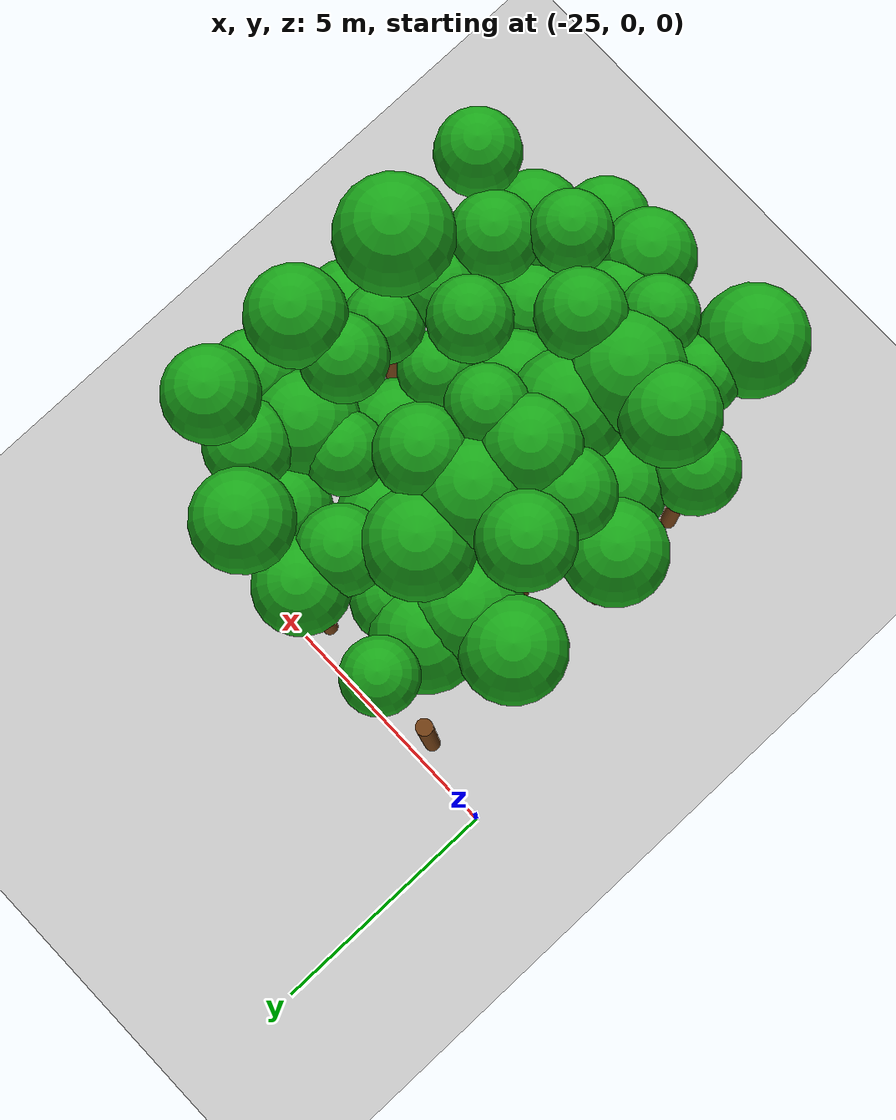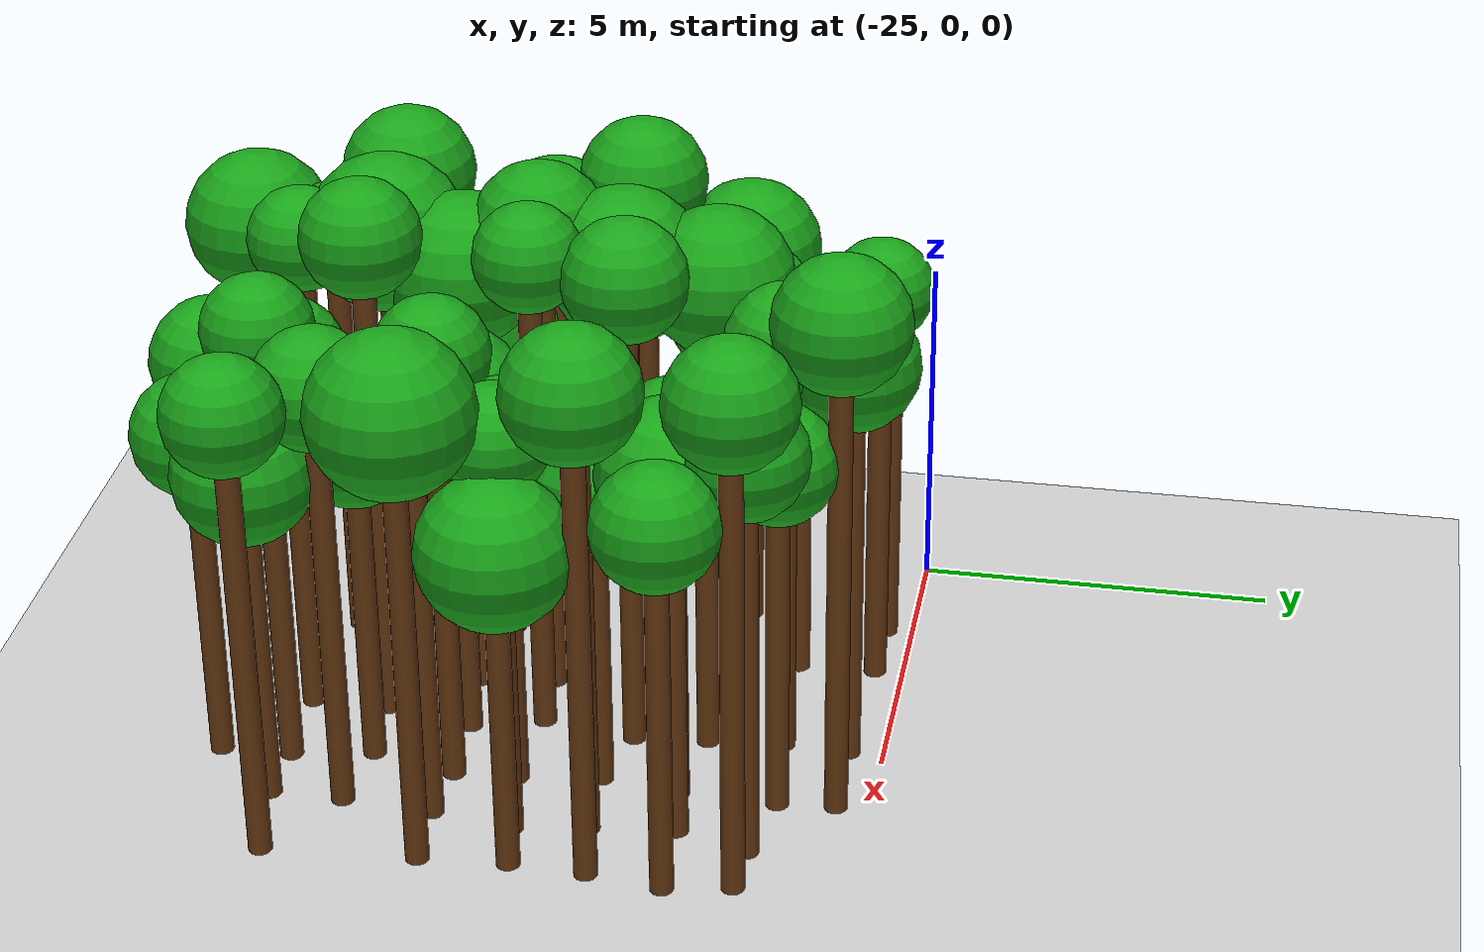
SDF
<sdf version="1.6">
 <world name="forest_world">
  <include><uri>model://sun</uri></include>
  <include><uri>model://ground_plane</uri></include>
  <model name="tree_351_trunk">
   <static>true</static>
   <pose>-23.28 -6.93 2.46 0 0 0</pose>
   <link name="link">
    <collision name="collision">
     <geometry><cylinder><radius>0.16</radius><length>4.92</length></cylinder></geometry>
    </collision>
    <visual name="visual">
     <geometry><cylinder><radius>0.16</radius><length>4.92</length></cylinder></geometry>
     <material><ambient>0.35 0.20 0.05 1</ambient><diffuse>0.45 0.25 0.08 1</diffuse></material>
    </visual>
   </link>
  </model>
  <model name="tree_351_leaf">
   <static>true</static>
   <pose>-23.28 -6.93 5.42 0 0 0</pose>
   <link name="link">
    <collision name="collision"><geometry><sphere><radius>0.84</radius></sphere></geometry></collision>
    <visual name="visual">
     <geometry><sphere><radius>0.84</radius></sphere></geometry>
     <material><ambient>0.05 0.45 0.05 1</ambient><diffuse>0.10 0.65 0.10 1</diffuse></material>
    </visual>
   </link>
  </model>
  <model name="tree_353_trunk">
   <static>true</static>
   <pose>-23.42 -4.80 2.68 0 0 0</pose>
   <link name="link">
    <collision name="collision">
     <geometry><cylinder><radius>0.16</radius><length>5.36</length></cylinder></geometry>
    </collision>
    <visual name="visual">
     <geometry><cylinder><radius>0.16</radius><length>5.36</length></cylinder></geometry>
     <material><ambient>0.35 0.20 0.05 1</ambient><diffuse>0.45 0.25 0.08 1</diffuse></material>
    </visual>
   </link>
  </model>
  <model name="tree_353_leaf">
   <static>true</static>
   <pose>-23.42 -4.80 5.95 0 0 0</pose>
   <link name="link">
    <collision name="collision"><geometry><sphere><radius>0.97</radius></sphere></geometry></collision>
    <visual name="visual">
     <geometry><sphere><radius>0.97</radius></sphere></geometry>
     <material><ambient>0.05 0.45 0.05 1</ambient><diffuse>0.10 0.65 0.10 1</diffuse></material>
    </visual>
   </link>
  </model>
  <model name="tree_355_trunk">
   <static>true</static>
   <pose>-23.45 -2.37 2.70 0 0 0</pose>
   <link name="link">
    <collision name="collision">
     <geometry><cylinder><radius>0.16</radius><length>5.40</length></cylinder></geometry>
    </collision>
    <visual name="visual">
     <geometry><cylinder><radius>0.16</radius><length>5.40</length></cylinder></geometry>
     <material><ambient>0.35 0.20 0.05 1</ambient><diffuse>0.45 0.25 0.08 1</diffuse></material>
    </visual>
   </link>
  </model>
  <model name="tree_355_leaf">
   <static>true</static>
   <pose>-23.45 -2.37 5.98 0 0 0</pose>
   <link name="link">
    <collision name="collision"><geometry><sphere><radius>0.97</radius></sphere></geometry></collision>
    <visual name="visual">
     <geometry><sphere><radius>0.97</radius></sphere></geometry>
     <material><ambient>0.05 0.45 0.05 1</ambient><diffuse>0.10 0.65 0.10 1</diffuse></material>
    </visual>
   </link>
  </model>
  <model name="tree_357_trunk">
   <static>true</static>
   <pose>-23.30 -0.38 2.47 0 0 0</pose>
   <link name="link">
    <collision name="collision">
     <geometry><cylinder><radius>0.16</radius><length>4.94</length></cylinder></geometry>
    </collision>
    <visual name="visual">
     <geometry><cylinder><radius>0.16</radius><length>4.94</length></cylinder></geometry>
     <material><ambient>0.35 0.20 0.05 1</ambient><diffuse>0.45 0.25 0.08 1</diffuse></material>
    </visual>
   </link>
  </model>
  <model name="tree_404_leaf">
   <static>true</static>
   <pose>-22.42 -9.04 6.35 0 0 0</pose>
   <link name="link">
    <collision name="collision"><geometry><sphere><radius>1.01</radius></sphere></geometry></collision>
    <visual name="visual">
     <geometry><sphere><radius>1.01</radius></sphere></geometry>
     <material><ambient>0.05 0.45 0.05 1</ambient><diffuse>0.10 0.65 0.10 1</diffuse></material>
    </visual>
   </link>
  </model>
  <model name="tree_405_trunk">
   <static>true</static>
   <pose>-22.24 -7.93 2.96 0 0 0</pose>
   <link name="link">
    <collision name="collision">
     <geometry><cylinder><radius>0.16</radius><length>5.92</length></cylinder></geometry>
    </collision>
    <visual name="visual">
     <geometry><cylinder><radius>0.16</radius><length>5.92</length></cylinder></geometry>
     <material><ambient>0.35 0.20 0.05 1</ambient><diffuse>0.45 0.25 0.08 1</diffuse></material>
    </visual>
   </link>
  </model>
  <model name="tree_405_leaf">
   <static>true</static>
   <pose>-22.24 -7.93 6.35 0 0 0</pose>
   <link name="link">
    <collision name="collision"><geometry><sphere><radius>0.72</radius></sphere></geometry></collision>
    <visual name="visual">
     <geometry><sphere><radius>0.72</radius></sphere></geometry>
     <material><ambient>0.05 0.45 0.05 1</ambient><diffuse>0.10 0.65 0.10 1</diffuse></material>
    </visual>
   </link>
  </model>
  <model name="tree_406_trunk">
   <static>true</static>
   <pose>-22.46 -6.89 3.35 0 0 0</pose>
   <link name="link">
    <collision name="collision">
     <geometry><cylinder><radius>0.16</radius><length>6.71</length></cylinder></geometry>
    </collision>
    <visual name="visual">
     <geometry><cylinder><radius>0.16</radius><length>6.71</length></cylinder></geometry>
     <material><ambient>0.35 0.20 0.05 1</ambient><diffuse>0.45 0.25 0.08 1</diffuse></material>
    </visual>
   </link>
  </model>
  <model name="tree_406_leaf">
   <static>true</static>
   <pose>-22.46 -6.89 7.26 0 0 0</pose>
   <link name="link">
    <collision name="collision"><geometry><sphere><radius>0.91</radius></sphere></geometry></collision>
    <visual name="visual">
     <geometry><sphere><radius>0.91</radius></sphere></geometry>
     <material><ambient>0.05 0.45 0.05 1</ambient><diffuse>0.10 0.65 0.10 1</diffuse></material>
    </visual>
   </link>
  </model>
  <model name="tree_407_trunk">
   <static>true</static>
   <pose>-22.47 -5.70 2.28 0 0 0</pose>
   <link name="link">
    <collision name="collision">
     <geometry><cylinder><radius>0.16</radius><length>4.56</length></cylinder></geometry>
    </collision>
    <visual name="visual">
     <geometry><cylinder><radius>0.16</radius><length>4.56</length></cylinder></geometry>
     <material><ambient>0.35 0.20 0.05 1</ambient><diffuse>0.45 0.25 0.08 1</diffuse></material>
    </visual>
   </link>
  </model>
  <model name="tree_407_leaf">
   <static>true</static>
   <pose>-22.47 -5.70 5.17 0 0 0</pose>
   <link name="link">
    <collision name="collision"><geometry><sphere><radius>1.02</radius></sphere></geometry></collision>
    <visual name="visual">
     <geometry><sphere><radius>1.02</radius></sphere></geometry>
     <material><ambient>0.05 0.45 0.05 1</ambient><diffuse>0.10 0.65 0.10 1</diffuse></material>
    </visual>
   </link>
  </model>
  <model name="tree_408_trunk">
   <static>true</static>
   <pose>-22.22 -4.81 3.18 0 0 0</pose>
   <link name="link">
    <collision name="collision">
     <geometry><cylinder><radius>0.16</radius><length>6.35</length></cylinder></geometry>
    </collision>
    <visual name="visual">
     <geometry><cylinder><radius>0.16</radius><length>6.35</length></cylinder></geometry>
     <material><ambient>0.35 0.20 0.05 1</ambient><diffuse>0.45 0.25 0.08 1</diffuse></material>
    </visual>
   </link>
  </model>
  <model name="tree_408_leaf">
   <static>true</static>
   <pose>-22.22 -4.81 6.86 0 0 0</pose>
   <link name="link">
    <collision name="collision"><geometry><sphere><radius>0.84</radius></sphere></geometry></collision>
    <visual name="visual">
     <geometry><sphere><radius>0.84</radius></sphere></geometry>
     <material><ambient>0.05 0.45 0.05 1</ambient><diffuse>0.10 0.65 0.10 1</diffuse></material>
    </visual>
   </link>
  </model>
  <model name="tree_409_trunk">
   <static>true</static>
   <pose>-22.38 -3.65 3.45 0 0 0</pose>
   <link name="link">
    <collision name="collision">
     <geometry><cylinder><radius>0.16</radius><length>6.90</length></cylinder></geometry>
    </collision>
    <visual name="visual">
     <geometry><cylinder><radius>0.16</radius><length>6.90</length></cylinder></geometry>
     <material><ambient>0.35 0.20 0.05 1</ambient><diffuse>0.45 0.25 0.08 1</diffuse></material>
    </visual>
   </link>
  </model>
  <model name="tree_409_leaf">
   <static>true</static>
   <pose>-22.38 -3.65 7.42 0 0 0</pose>
   <link name="link">
    <collision name="collision"><geometry><sphere><radius>0.87</radius></sphere></geometry></collision>
    <visual name="visual">
     <geometry><sphere><radius>0.87</radius></sphere></geometry>
     <material><ambient>0.05 0.45 0.05 1</ambient><diffuse>0.10 0.65 0.10 1</diffuse></material>
    </visual>
   </link>
  </model>
  <model name="tree_410_trunk">
   <static>true</static>
   <pose>-22.35 -2.32 2.49 0 0 0</pose>
   <link name="link">
    <collision name="collision">
     <geometry><cylinder><radius>0.16</radius><length>4.98</length></cylinder></geometry>
    </collision>
    <visual name="visual">
     <geometry><cylinder><radius>0.16</radius><length>4.98</length></cylinder></geometry>
     <material><ambient>0.35 0.20 0.05 1</ambient><diffuse>0.45 0.25 0.08 1</diffuse></material>
    </visual>
   </link>
  </model>
  <model name="tree_410_leaf">
   <static>true</static>
   <pose>-22.35 -2.32 5.60 0 0 0</pose>
   <link name="link">
    <collision name="collision"><geometry><sphere><radius>1.03</radius></sphere></geometry></collision>
    <visual name="visual">
     <geometry><sphere><radius>1.03</radius></sphere></geometry>
     <material><ambient>0.05 0.45 0.05 1</ambient><diffuse>0.10 0.65 0.10 1</diffuse></material>
    </visual>
   </link>
  </model>
  <model name="tree_411_trunk">
   <static>true</static>
   <pose>-22.19 -1.49 2.34 0 0 0</pose>
   <link name="link">
    <collision name="collision">
     <geometry><cylinder><radius>0.16</radius><length>4.67</length></cylinder></geometry>
    </collision>
    <visual name="visual">
     <geometry><cylinder><radius>0.16</radius><length>4.67</length></cylinder></geometry>
     <material><ambient>0.35 0.20 0.05 1</ambient><diffuse>0.45 0.25 0.08 1</diffuse></material>
    </visual>
   </link>
  </model>
  <model name="tree_411_leaf">
   <static>true</static>
   <pose>-22.19 -1.49 5.29 0 0 0</pose>
   <link name="link">
    <collision name="collision"><geometry><sphere><radius>1.03</radius></sphere></geometry></collision>
    <visual name="visual">
     <geometry><sphere><radius>1.03</radius></sphere></geometry>
     <material><ambient>0.05 0.45 0.05 1</ambient><diffuse>0.10 0.65 0.10 1</diffuse></material>
    </visual>
   </link>
  </model>
  <model name="tree_412_trunk">
   <static>true</static>
   <pose>-22.23 -0.40 2.86 0 0 0</pose>
   <link name="link">
    <collision name="collision">
     <geometry><cylinder><radius>0.16</radius><length>5.71</length></cylinder></geometry>
    </collision>
    <visual name="visual">
     <geometry><cylinder><radius>0.16</radius><length>5.71</length></cylinder></geometry>
     <material><ambient>0.35 0.20 0.05 1</ambient><diffuse>0.45 0.25 0.08 1</diffuse></material>
    </visual>
   </link>
  </model>
  <model name="tree_412_leaf">
   <static>true</static>
   <pose>-22.23 -0.40 6.14 0 0 0</pose>
   <link name="link">
    <collision name="collision"><geometry><sphere><radius>0.71</radius></sphere></geometry></collision>
    <visual name="visual">
     <geometry><sphere><radius>0.71</radius></sphere></geometry>
     <material><ambient>0.05 0.45 0.05 1</ambient><diffuse>0.10 0.65 0.10 1</diffuse></material>
    </visual>
   </link>
  </model>
  <model name="tree_460_trunk">
   <static>true</static>
   <pose>-21.06 -8.04 3.21 0 0 0</pose>
   <link name="link">
    <collision name="collision">
     <geometry><cylinder><radius>0.16</radius><length>6.41</length></cylinder></geometry>
    </collision>
    <visual name="visual">
     <geometry><cylinder><radius>0.16</radius><length>6.41</length></cylinder></geometry>
     <material><ambient>0.35 0.20 0.05 1</ambient><diffuse>0.45 0.25 0.08 1</diffuse></material>
    </visual>
   </link>
  </model>
  <model name="tree_460_leaf">
   <static>true</static>
   <pose>-21.06 -8.04 6.85 0 0 0</pose>
   <link name="link">
    <collision name="collision"><geometry><sphere><radius>0.72</radius></sphere></geometry></collision>
    <visual name="visual">
     <geometry><sphere><radius>0.72</radius></sphere></geometry>
     <material><ambient>0.05 0.45 0.05 1</ambient><diffuse>0.10 0.65 0.10 1</diffuse></material>
    </visual>
   </link>
  </model>
  <model name="tree_461_trunk">
   <static>true</static>
   <pose>-21.37 -6.93 3.12 0 0 0</pose>
   <link name="link">
    <collision name="collision">
     <geometry><cylinder><radius>0.16</radius><length>6.25</length></cylinder></geometry>
    </collision>
    <visual name="visual">
     <geometry><cylinder><radius>0.16</radius><length>6.25</length></cylinder></geometry>
     <material><ambient>0.35 0.20 0.05 1</ambient><diffuse>0.45 0.25 0.08 1</diffuse></material>
    </visual>
   </link>
  </model>
  <model name="tree_461_leaf">
   <static>true</static>
   <pose>-21.37 -6.93 6.89 0 0 0</pose>
   <link name="link">
    <collision name="collision"><geometry><sphere><radius>1.08</radius></sphere></geometry></collision>
    <visual name="visual">
     <geometry><sphere><radius>1.08</radius></sphere></geometry>
     <material><ambient>0.05 0.45 0.05 1</ambient><diffuse>0.10 0.65 0.10 1</diffuse></material>
    </visual>
   </link>
  </model>
  <model name="tree_462_trunk">
   <static>true</static>
   <pose>-21.11 -5.85 2.97 0 0 0</pose>
   <link name="link">
    <collision name="collision">
     <geometry><cylinder><radius>0.16</radius><length>5.94</length></cylinder></geometry>
    </collision>
    <visual name="visual">
     <geometry><cylinder><radius>0.16</radius><length>5.94</length></cylinder></geometry>
     <material><ambient>0.35 0.20 0.05 1</ambient><diffuse>0.45 0.25 0.08 1</diffuse></material>
    </visual>
   </link>
  </model>
  <model name="tree_462_leaf">
   <static>true</static>
   <pose>-21.11 -5.85 6.57 0 0 0</pose>
   <link name="link">
    <collision name="collision"><geometry><sphere><radius>1.05</radius></sphere></geometry></collision>
    <visual name="visual">
     <geometry><sphere><radius>1.05</radius></sphere></geometry>
     <material><ambient>0.05 0.45 0.05 1</ambient><diffuse>0.10 0.65 0.10 1</diffuse></material>
    </visual>
   </link>
  </model>
  <model name="tree_463_trunk">
   <static>true</static>
   <pose>-21.25 -4.82 3.31 0 0 0</pose>
   <link name="link">
    <collision name="collision">
     <geometry><cylinder><radius>0.16</radius><length>6.62</length></cylinder></geometry>
    </collision>
    <visual name="visual">
     <geometry><cylinder><radius>0.16</radius><length>6.62</length></cylinder></geometry>
     <material><ambient>0.35 0.20 0.05 1</ambient><diffuse>0.45 0.25 0.08 1</diffuse></material>
    </visual>
   </link>
  </model>
  <model name="tree_463_leaf">
   <static>true</static>
   <pose>-21.25 -4.82 7.17 0 0 0</pose>
   <link name="link">
    <collision name="collision"><geometry><sphere><radius>0.92</radius></sphere></geometry></collision>
    <visual name="visual">
     <geometry><sphere><radius>0.92</radius></sphere></geometry>
     <material><ambient>0.05 0.45 0.05 1</ambient><diffuse>0.10 0.65 0.10 1</diffuse></material>
    </visual>
   </link>
  </model>
  <model name="tree_464_trunk">
   <static>true</static>
   <pose>-21.11 -3.66 3.09 0 0 0</pose>
   <link name="link">
    <collision name="collision">
     <geometry><cylinder><radius>0.16</radius><length>6.18</length></cylinder></geometry>
    </collision>
    <visual name="visual">
     <geometry><cylinder><radius>0.16</radius><length>6.18</length></cylinder></geometry>
     <material><ambient>0.35 0.20 0.05 1</ambient><diffuse>0.45 0.25 0.08 1</diffuse></material>
    </visual>
   </link>
  </model>
  <model name="tree_464_leaf">
   <static>true</static>
   <pose>-21.11 -3.66 6.82 0 0 0</pose>
   <link name="link">
    <collision name="collision"><geometry><sphere><radius>1.06</radius></sphere></geometry></collision>
    <visual name="visual">
     <geometry><sphere><radius>1.06</radius></sphere></geometry>
     <material><ambient>0.05 0.45 0.05 1</ambient><diffuse>0.10 0.65 0.10 1</diffuse></material>
    </visual>
   </link>
  </model>
  <model name="tree_465_trunk">
   <static>true</static>
   <pose>-21.10 -2.40 3.04 0 0 0</pose>
   <link name="link">
    <collision name="collision">
     <geometry><cylinder><radius>0.16</radius><length>6.09</length></cylinder></geometry>
    </collision>
    <visual name="visual">
     <geometry><cylinder><radius>0.16</radius><length>6.09</length></cylinder></geometry>
     <material><ambient>0.35 0.20 0.05 1</ambient><diffuse>0.45 0.25 0.08 1</diffuse></material>
    </visual>
   </link>
  </model>
  <model name="tree_465_leaf">
   <static>true</static>
   <pose>-21.10 -2.40 6.69 0 0 0</pose>
   <link name="link">
    <collision name="collision"><geometry><sphere><radius>1.01</radius></sphere></geometry></collision>
    <visual name="visual">
     <geometry><sphere><radius>1.01</radius></sphere></geometry>
     <material><ambient>0.05 0.45 0.05 1</ambient><diffuse>0.10 0.65 0.10 1</diffuse></material>
    </visual>
   </link>
  </model>
  <model name="tree_466_trunk">
   <static>true</static>
   <pose>-21.31 -1.56 2.31 0 0 0</pose>
   <link name="link">
    <collision name="collision">
     <geometry><cylinder><radius>0.16</radius><length>4.63</length></cylinder></geometry>
    </collision>
    <visual name="visual">
     <geometry><cylinder><radius>0.16</radius><length>4.63</length></cylinder></geometry>
     <material><ambient>0.35 0.20 0.05 1</ambient><diffuse>0.45 0.25 0.08 1</diffuse></material>
    </visual>
   </link>
  </model>
  <model name="tree_466_leaf">
   <static>true</static>
   <pose>-21.31 -1.56 5.12 0 0 0</pose>
   <link name="link">
    <collision name="collision"><geometry><sphere><radius>0.82</radius></sphere></geometry></collision>
    <visual name="visual">
     <geometry><sphere><radius>0.82</radius></sphere></geometry>
     <material><ambient>0.05 0.45 0.05 1</ambient><diffuse>0.10 0.65 0.10 1</diffuse></material>
    </visual>
   </link>
  </model>
  <model name="tree_514_trunk">
   <static>true</static>
   <pose>-19.96 -8.98 2.49 0 0 0</pose>
   <link name="link">
    <collision name="collision">
     <geometry><cylinder><radius>0.16</radius><length>4.98</length></cylinder></geometry>
    </collision>
    <visual name="visual">
     <geometry><cylinder><radius>0.16</radius><length>4.98</length></cylinder></geometry>
     <material><ambient>0.35 0.20 0.05 1</ambient><diffuse>0.45 0.25 0.08 1</diffuse></material>
    </visual>
   </link>
  </model>
  <model name="tree_514_leaf">
   <static>true</static>
   <pose>-19.96 -8.98 5.51 0 0 0</pose>
   <link name="link">
    <collision name="collision"><geometry><sphere><radius>0.89</radius></sphere></geometry></collision>
    <visual name="visual">
     <geometry><sphere><radius>0.89</radius></sphere></geometry>
     <material><ambient>0.05 0.45 0.05 1</ambient><diffuse>0.10 0.65 0.10 1</diffuse></material>
    </visual>
   </link>
  </model>
  <model name="tree_515_trunk">
   <static>true</static>
   <pose>-20.21 -8.07 2.54 0 0 0</pose>
   <link name="link">
    <collision name="collision">
     <geometry><cylinder><radius>0.16</radius><length>5.08</length></cylinder></geometry>
    </collision>
    <visual name="visual">
     <geometry><cylinder><radius>0.16</radius><length>5.08</length></cylinder></geometry>
     <material><ambient>0.35 0.20 0.05 1</ambient><diffuse>0.45 0.25 0.08 1</diffuse></material>
    </visual>
   </link>
  </model>
  <model name="tree_515_leaf">
   <static>true</static>
   <pose>-20.21 -8.07 5.55 0 0 0</pose>
   <link name="link">
    <collision name="collision"><geometry><sphere><radius>0.79</radius></sphere></geometry></collision>
    <visual name="visual">
     <geometry><sphere><radius>0.79</radius></sphere></geometry>
     <material><ambient>0.05 0.45 0.05 1</ambient><diffuse>0.10 0.65 0.10 1</diffuse></material>
    </visual>
   </link>
  </model>
  <model name="tree_516_trunk">
   <static>true</static>
   <pose>-20.22 -6.97 3.44 0 0 0</pose>
   <link name="link">
    <collision name="collision">
     <geometry><cylinder><radius>0.16</radius><length>6.88</length></cylinder></geometry>
    </collision>
    <visual name="visual">
     <geometry><cylinder><radius>0.16</radius><length>6.88</length></cylinder></geometry>
     <material><ambient>0.35 0.20 0.05 1</ambient><diffuse>0.45 0.25 0.08 1</diffuse></material>
    </visual>
   </link>
  </model>
  <model name="tree_516_leaf">
   <static>true</static>
   <pose>-20.22 -6.97 7.37 0 0 0</pose>
   <link name="link">
    <collision name="collision"><geometry><sphere><radius>0.81</radius></sphere></geometry></collision>
    <visual name="visual">
     <geometry><sphere><radius>0.81</radius></sphere></geometry>
     <material><ambient>0.05 0.45 0.05 1</ambient><diffuse>0.10 0.65 0.10 1</diffuse></material>
    </visual>
   </link>
  </model>
  <model name="tree_517_trunk">
   <static>true</static>
   <pose>-19.97 -5.75 2.38 0 0 0</pose>
   <link name="link">
    <collision name="collision">
     <geometry><cylinder><radius>0.16</radius><length>4.76</length></cylinder></geometry>
    </collision>
    <visual name="visual">
     <geometry><cylinder><radius>0.16</radius><length>4.76</length></cylinder></geometry>
     <material><ambient>0.35 0.20 0.05 1</ambient><diffuse>0.45 0.25 0.08 1</diffuse></material>
    </visual>
   </link>
  </model>
  <model name="tree_517_leaf">
   <static>true</static>
   <pose>-19.97 -5.75 5.32 0 0 0</pose>
   <link name="link">
    <collision name="collision"><geometry><sphere><radius>0.94</radius></sphere></geometry></collision>
    <visual name="visual">
     <geometry><sphere><radius>0.94</radius></sphere></geometry>
     <material><ambient>0.05 0.45 0.05 1</ambient><diffuse>0.10 0.65 0.10 1</diffuse></material>
    </visual>
   </link>
  </model>
  <model name="tree_518_trunk">
   <static>true</static>
   <pose>-20.26 -4.76 3.40 0 0 0</pose>
   <link name="link">
    <collision name="collision">
     <geometry><cylinder><radius>0.16</radius><length>6.80</length></cylinder></geometry>
    </collision>
    <visual name="visual">
     <geometry><cylinder><radius>0.16</radius><length>6.80</length></cylinder></geometry>
     <material><ambient>0.35 0.20 0.05 1</ambient><diffuse>0.45 0.25 0.08 1</diffuse></material>
    </visual>
   </link>
  </model>
  <model name="tree_518_leaf">
   <static>true</static>
   <pose>-20.26 -4.76 7.25 0 0 0</pose>
   <link name="link">
    <collision name="collision"><geometry><sphere><radius>0.74</radius></sphere></geometry></collision>
    <visual name="visual">
     <geometry><sphere><radius>0.74</radius></sphere></geometry>
     <material><ambient>0.05 0.45 0.05 1</ambient><diffuse>0.10 0.65 0.10 1</diffuse></material>
    </visual>
   </link>
  </model>
  <model name="tree_519_trunk">
   <static>true</static>
   <pose>-20.05 -3.45 3.32 0 0 0</pose>
   <link name="link">
    <collision name="collision">
     <geometry><cylinder><radius>0.16</radius><length>6.64</length></cylinder></geometry>
    </collision>
    <visual name="visual">
     <geometry><cylinder><radius>0.16</radius><length>6.64</length></cylinder></geometry>
     <material><ambient>0.35 0.20 0.05 1</ambient><diffuse>0.45 0.25 0.08 1</diffuse></material>
    </visual>
   </link>
  </model>
  <model name="tree_519_leaf">
   <static>true</static>
   <pose>-20.05 -3.45 7.14 0 0 0</pose>
   <link name="link">
    <collision name="collision"><geometry><sphere><radius>0.84</radius></sphere></geometry></collision>
    <visual name="visual">
     <geometry><sphere><radius>0.84</radius></sphere></geometry>
     <material><ambient>0.05 0.45 0.05 1</ambient><diffuse>0.10 0.65 0.10 1</diffuse></material>
    </visual>
   </link>
  </model>
  <model name="tree_520_trunk">
   <static>true</static>
   <pose>-20.15 -2.43 2.09 0 0 0</pose>
   <link name="link">
    <collision name="collision">
     <geometry><cylinder><radius>0.16</radius><length>4.19</length></cylinder></geometry>
    </collision>
    <visual name="visual">
     <geometry><cylinder><radius>0.16</radius><length>4.19</length></cylinder></geometry>
     <material><ambient>0.35 0.20 0.05 1</ambient><diffuse>0.45 0.25 0.08 1</diffuse></material>
    </visual>
   </link>
  </model>
  <model name="tree_520_leaf">
   <static>true</static>
   <pose>-20.15 -2.43 4.77 0 0 0</pose>
   <link name="link">
    <collision name="collision"><geometry><sphere><radius>0.97</radius></sphere></geometry></collision>
    <visual name="visual">
     <geometry><sphere><radius>0.97</radius></sphere></geometry>
     <material><ambient>0.05 0.45 0.05 1</ambient><diffuse>0.10 0.65 0.10 1</diffuse></material>
    </visual>
   </link>
  </model>
  <model name="tree_521_trunk">
   <static>true</static>
   <pose>-20.23 -1.39 2.91 0 0 0</pose>
   <link name="link">
    <collision name="collision">
     <geometry><cylinder><radius>0.16</radius><length>5.82</length></cylinder></geometry>
    </collision>
    <visual name="visual">
     <geometry><cylinder><radius>0.16</radius><length>5.82</length></cylinder></geometry>
     <material><ambient>0.35 0.20 0.05 1</ambient><diffuse>0.45 0.25 0.08 1</diffuse></material>
    </visual>
   </link>
  </model>
  <model name="tree_521_leaf">
   <static>true</static>
   <pose>-20.23 -1.39 6.31 0 0 0</pose>
   <link name="link">
    <collision name="collision"><geometry><sphere><radius>0.82</radius></sphere></geometry></collision>
    <visual name="visual">
     <geometry><sphere><radius>0.82</radius></sphere></geometry>
     <material><ambient>0.05 0.45 0.05 1</ambient><diffuse>0.10 0.65 0.10 1</diffuse></material>
    </visual>
   </link>
  </model>
  <model name="tree_522_trunk">
   <static>true</static>
   <pose>-20.18 -0.48 2.79 0 0 0</pose>
   <link name="link">
    <collision name="collision">
     <geometry><cylinder><radius>0.16</radius><length>5.57</length></cylinder></geometry>
    </collision>
    <visual name="visual">
     <geometry><cylinder><radius>0.16</radius><length>5.57</length></cylinder></geometry>
     <material><ambient>0.35 0.20 0.05 1</ambient><diffuse>0.45 0.25 0.08 1</diffuse></material>
    </visual>
   </link>
  </model>
  <model name="tree_522_leaf">
   <static>true</static>
   <pose>-20.18 -0.48 6.10 0 0 0</pose>
   <link name="link">
    <collision name="collision"><geometry><sphere><radius>0.88</radius></sphere></geometry></collision>
    <visual name="visual">
     <geometry><sphere><radius>0.88</radius></sphere></geometry>
     <material><ambient>0.05 0.45 0.05 1</ambient><diffuse>0.10 0.65 0.10 1</diffuse></material>
    </visual>
   </link>
  </model>
  <model name="tree_569_trunk">
   <static>true</static>
   <pose>-18.88 -9.00 2.25 0 0 0</pose>
   <link name="link">
    <collision name="collision">
     <geometry><cylinder><radius>0.16</radius><length>4.50</length></cylinder></geometry>
    </collision>
    <visual name="visual">
     <geometry><cylinder><radius>0.16</radius><length>4.50</length></cylinder></geometry>
     <material><ambient>0.35 0.20 0.05 1</ambient><diffuse>0.45 0.25 0.08 1</diffuse></material>
    </visual>
   </link>
  </model>
  <model name="tree_569_leaf">
   <static>true</static>
   <pose>-18.88 -9.00 5.00 0 0 0</pose>
   <link name="link">
    <collision name="collision"><geometry><sphere><radius>0.84</radius></sphere></geometry></collision>
    <visual name="visual">
     <geometry><sphere><radius>0.84</radius></sphere></geometry>
     <material><ambient>0.05 0.45 0.05 1</ambient><diffuse>0.10 0.65 0.10 1</diffuse></material>
    </visual>
   </link>
  </model>
  <model name="tree_570_trunk">
   <static>true</static>
   <pose>-18.91 -8.02 3.09 0 0 0</pose>
   <link name="link">
    <collision name="collision">
     <geometry><cylinder><radius>0.16</radius><length>6.18</length></cylinder></geometry>
    </collision>
    <visual name="visual">
     <geometry><cylinder><radius>0.16</radius><length>6.18</length></cylinder></geometry>
     <material><ambient>0.35 0.20 0.05 1</ambient><diffuse>0.45 0.25 0.08 1</diffuse></material>
    </visual>
   </link>
  </model>
  <model name="tree_570_leaf">
   <static>true</static>
   <pose>-18.91 -8.02 6.63 0 0 0</pose>
   <link name="link">
    <collision name="collision"><geometry><sphere><radius>0.75</radius></sphere></geometry></collision>
    <visual name="visual">
     <geometry><sphere><radius>0.75</radius></sphere></geometry>
     <material><ambient>0.05 0.45 0.05 1</ambient><diffuse>0.10 0.65 0.10 1</diffuse></material>
    </visual>
   </link>
  </model>
  <model name="tree_571_trunk">
   <static>true</static>
   <pose>-19.11 -6.90 2.21 0 0 0</pose>
   <link name="link">
    <collision name="collision">
     <geometry><cylinder><radius>0.16</radius><length>4.41</length></cylinder></geometry>
    </collision>
    <visual name="visual">
     <geometry><cylinder><radius>0.16</radius><length>4.41</length></cylinder></geometry>
     <material><ambient>0.35 0.20 0.05 1</ambient><diffuse>0.45 0.25 0.08 1</diffuse></material>
    </visual>
   </link>
  </model>
  <model name="tree_571_leaf">
   <static>true</static>
   <pose>-19.11 -6.90 4.92 0 0 0</pose>
   <link name="link">
    <collision name="collision"><geometry><sphere><radius>0.85</radius></sphere></geometry></collision>
    <visual name="visual">
     <geometry><sphere><radius>0.85</radius></sphere></geometry>
     <material><ambient>0.05 0.45 0.05 1</ambient><diffuse>0.10 0.65 0.10 1</diffuse></material>
    </visual>
   </link>
  </model>
  <model name="tree_572_trunk">
   <static>true</static>
   <pose>-18.82 -5.71 3.04 0 0 0</pose>
   <link name="link">
    <collision name="collision">
     <geometry><cylinder><radius>0.16</radius><length>6.07</length></cylinder></geometry>
    </collision>
    <visual name="visual">
     <geometry><cylinder><radius>0.16</radius><length>6.07</length></cylinder></geometry>
     <material><ambient>0.35 0.20 0.05 1</ambient><diffuse>0.45 0.25 0.08 1</diffuse></material>
    </visual>
   </link>
  </model>
  <model name="tree_572_leaf">
   <static>true</static>
   <pose>-18.82 -5.71 6.54 0 0 0</pose>
   <link name="link">
    <collision name="collision"><geometry><sphere><radius>0.77</radius></sphere></geometry></collision>
    <visual name="visual">
     <geometry><sphere><radius>0.77</radius></sphere></geometry>
     <material><ambient>0.05 0.45 0.05 1</ambient><diffuse>0.10 0.65 0.10 1</diffuse></material>
    </visual>
   </link>
  </model>
  <model name="tree_573_trunk">
   <static>true</static>
   <pose>-18.87 -4.84 2.52 0 0 0</pose>
   <link name="link">
    <collision name="collision">
     <geometry><cylinder><radius>0.16</radius><length>5.04</length></cylinder></geometry>
    </collision>
    <visual name="visual">
     <geometry><cylinder><radius>0.16</radius><length>5.04</length></cylinder></geometry>
     <material><ambient>0.35 0.20 0.05 1</ambient><diffuse>0.45 0.25 0.08 1</diffuse></material>
    </visual>
   </link>
  </model>
  <model name="tree_573_leaf">
   <static>true</static>
   <pose>-18.87 -4.84 5.47 0 0 0</pose>
   <link name="link">
    <collision name="collision"><geometry><sphere><radius>0.71</radius></sphere></geometry></collision>
    <visual name="visual">
     <geometry><sphere><radius>0.71</radius></sphere></geometry>
     <material><ambient>0.05 0.45 0.05 1</ambient><diffuse>0.10 0.65 0.10 1</diffuse></material>
    </visual>
   </link>
  </model>
  <model name="tree_574_trunk">
   <static>true</static>
   <pose>-19.04 -3.70 2.10 0 0 0</pose>
   <link name="link">
    <collision name="collision">
     <geometry><cylinder><radius>0.16</radius><length>4.21</length></cylinder></geometry>
    </collision>
    <visual name="visual">
     <geometry><cylinder><radius>0.16</radius><length>4.21</length></cylinder></geometry>
     <material><ambient>0.35 0.20 0.05 1</ambient><diffuse>0.45 0.25 0.08 1</diffuse></material>
    </visual>
   </link>
  </model>
  <model name="tree_574_leaf">
   <static>true</static>
   <pose>-19.04 -3.70 4.76 0 0 0</pose>
   <link name="link">
    <collision name="collision"><geometry><sphere><radius>0.92</radius></sphere></geometry></collision>
    <visual name="visual">
     <geometry><sphere><radius>0.92</radius></sphere></geometry>
     <material><ambient>0.05 0.45 0.05 1</ambient><diffuse>0.10 0.65 0.10 1</diffuse></material>
    </visual>
   </link>
  </model>
  <model name="tree_575_trunk">
   <static>true</static>
   <pose>-18.86 -2.62 2.56 0 0 0</pose>
   <link name="link">
    <collision name="collision">
     <geometry><cylinder><radius>0.16</radius><length>5.12</length></cylinder></geometry>
    </collision>
    <visual name="visual">
     <geometry><cylinder><radius>0.16</radius><length>5.12</length></cylinder></geometry>
     <material><ambient>0.35 0.20 0.05 1</ambient><diffuse>0.45 0.25 0.08 1</diffuse></material>
    </visual>
   </link>
  </model>
  <model name="tree_575_leaf">
   <static>true</static>
   <pose>-18.86 -2.62 5.59 0 0 0</pose>
   <link name="link">
    <collision name="collision"><geometry><sphere><radius>0.78</radius></sphere></geometry></collision>
    <visual name="visual">
     <geometry><sphere><radius>0.78</radius></sphere></geometry>
     <material><ambient>0.05 0.45 0.05 1</ambient><diffuse>0.10 0.65 0.10 1</diffuse></material>
    </visual>
   </link>
  </model>
  <model name="tree_576_trunk">
   <static>true</static>
   <pose>-18.85 -1.26 2.42 0 0 0</pose>
   <link name="link">
    <collision name="collision">
     <geometry><cylinder><radius>0.16</radius><length>4.84</length></cylinder></geometry>
    </collision>
    <visual name="visual">
     <geometry><cylinder><radius>0.16</radius><length>4.84</length></cylinder></geometry>
     <material><ambient>0.35 0.20 0.05 1</ambient><diffuse>0.45 0.25 0.08 1</diffuse></material>
    </visual>
   </link>
  </model>
  <model name="tree_576_leaf">
   <static>true</static>
   <pose>-18.85 -1.26 5.32 0 0 0</pose>
   <link name="link">
    <collision name="collision"><geometry><sphere><radius>0.81</radius></sphere></geometry></collision>
    <visual name="visual">
     <geometry><sphere><radius>0.81</radius></sphere></geometry>
     <material><ambient>0.05 0.45 0.05 1</ambient><diffuse>0.10 0.65 0.10 1</diffuse></material>
    </visual>
   </link>
  </model>
  <model name="tree_577_trunk">
   <static>true</static>
   <pose>-18.91 -0.47 3.41 0 0 0</pose>
   <link name="link">
    <collision name="collision">
     <geometry><cylinder><radius>0.16</radius><length>6.82</length></cylinder></geometry>
    </collision>
    <visual name="visual">
     <geometry><cylinder><radius>0.16</radius><length>6.82</length></cylinder></geometry>
     <material><ambient>0.35 0.20 0.05 1</ambient><diffuse>0.45 0.25 0.08 1</diffuse></material>
    </visual>
   </link>
  </model>
  <model name="tree_577_leaf">
   <static>true</static>
   <pose>-18.91 -0.47 7.37 0 0 0</pose>
   <link name="link">
    <collision name="collision"><geometry><sphere><radius>0.91</radius></sphere></geometry></collision>
    <visual name="visual">
     <geometry><sphere><radius>0.91</radius></sphere></geometry>
     <material><ambient>0.05 0.45 0.05 1</ambient><diffuse>0.10 0.65 0.10 1</diffuse></material>
    </visual>
   </link>
  </model>
  <model name="tree_625_trunk">
   <static>true</static>
   <pose>-17.99 -8.06 2.23 0 0 0</pose>
   <link name="link">
    <collision name="collision">
     <geometry><cylinder><radius>0.16</radius><length>4.45</length></cylinder></geometry>
    </collision>
    <visual name="visual">
     <geometry><cylinder><radius>0.16</radius><length>4.45</length></cylinder></geometry>
     <material><ambient>0.35 0.20 0.05 1</ambient><diffuse>0.45 0.25 0.08 1</diffuse></material>
    </visual>
   </link>
  </model>
  <model name="tree_625_leaf">
   <static>true</static>
   <pose>-17.99 -8.06 5.02 0 0 0</pose>
   <link name="link">
    <collision name="collision"><geometry><sphere><radius>0.95</radius></sphere></geometry></collision>
    <visual name="visual">
     <geometry><sphere><radius>0.95</radius></sphere></geometry>
     <material><ambient>0.05 0.45 0.05 1</ambient><diffuse>0.10 0.65 0.10 1</diffuse></material>
    </visual>
   </link>
  </model>
  <model name="tree_626_trunk">
   <static>true</static>
   <pose>-18.00 -7.05 2.93 0 0 0</pose>
   <link name="link">
    <collision name="collision">
     <geometry><cylinder><radius>0.16</radius><length>5.86</length></cylinder></geometry>
    </collision>
    <visual name="visual">
     <geometry><cylinder><radius>0.16</radius><length>5.86</length></cylinder></geometry>
     <material><ambient>0.35 0.20 0.05 1</ambient><diffuse>0.45 0.25 0.08 1</diffuse></material>
    </visual>
   </link>
  </model>
  <model name="tree_626_leaf">
   <static>true</static>
   <pose>-18.00 -7.05 6.36 0 0 0</pose>
   <link name="link">
    <collision name="collision"><geometry><sphere><radius>0.82</radius></sphere></geometry></collision>
    <visual name="visual">
     <geometry><sphere><radius>0.82</radius></sphere></geometry>
     <material><ambient>0.05 0.45 0.05 1</ambient><diffuse>0.10 0.65 0.10 1</diffuse></material>
    </visual>
   </link>
  </model>
  <model name="tree_627_trunk">
   <static>true</static>
   <pose>-17.91 -5.79 2.79 0 0 0</pose>
   <link name="link">
    <collision name="collision">
     <geometry><cylinder><radius>0.16</radius><length>5.58</length></cylinder></geometry>
    </collision>
    <visual name="visual">
     <geometry><cylinder><radius>0.16</radius><length>5.58</length></cylinder></geometry>
     <material><ambient>0.35 0.20 0.05 1</ambient><diffuse>0.45 0.25 0.08 1</diffuse></material>
    </visual>
   </link>
  </model>
  <model name="tree_627_leaf">
   <static>true</static>
   <pose>-17.91 -5.79 6.03 0 0 0</pose>
   <link name="link">
    <collision name="collision"><geometry><sphere><radius>0.75</radius></sphere></geometry></collision>
    <visual name="visual">
     <geometry><sphere><radius>0.75</radius></sphere></geometry>
     <material><ambient>0.05 0.45 0.05 1</ambient><diffuse>0.10 0.65 0.10 1</diffuse></material>
    </visual>
   </link>
  </model>
  <model name="tree_628_trunk">
   <static>true</static>
   <pose>-17.73 -4.66 2.78 0 0 0</pose>
   <link name="link">
    <collision name="collision">
     <geometry><cylinder><radius>0.16</radius><length>5.57</length></cylinder></geometry>
    </collision>
    <visual name="visual">
     <geometry><cylinder><radius>0.16</radius><length>5.57</length></cylinder></geometry>
     <material><ambient>0.35 0.20 0.05 1</ambient><diffuse>0.45 0.25 0.08 1</diffuse></material>
    </visual>
   </link>
  </model>
  <model name="tree_628_leaf">
   <static>true</static>
   <pose>-17.73 -4.66 6.01 0 0 0</pose>
   <link name="link">
    <collision name="collision"><geometry><sphere><radius>0.74</radius></sphere></geometry></collision>
    <visual name="visual">
     <geometry><sphere><radius>0.74</radius></sphere></geometry>
     <material><ambient>0.05 0.45 0.05 1</ambient><diffuse>0.10 0.65 0.10 1</diffuse></material>
    </visual>
   </link>
  </model>
  <model name="tree_629_trunk">
   <static>true</static>
   <pose>-17.88 -3.65 3.11 0 0 0</pose>
   <link name="link">
    <collision name="collision">
     <geometry><cylinder><radius>0.16</radius><length>6.22</length></cylinder></geometry>
    </collision>
    <visual name="visual">
     <geometry><cylinder><radius>0.16</radius><length>6.22</length></cylinder></geometry>
     <material><ambient>0.35 0.20 0.05 1</ambient><diffuse>0.45 0.25 0.08 1</diffuse></material>
    </visual>
   </link>
  </model>
  <model name="tree_629_leaf">
   <static>true</static>
   <pose>-17.88 -3.65 6.69 0 0 0</pose>
   <link name="link">
    <collision name="collision"><geometry><sphere><radius>0.79</radius></sphere></geometry></collision>
    <visual name="visual">
     <geometry><sphere><radius>0.79</radius></sphere></geometry>
     <material><ambient>0.05 0.45 0.05 1</ambient><diffuse>0.10 0.65 0.10 1</diffuse></material>
    </visual>
   </link>
  </model>
  <model name="tree_630_trunk">
   <static>true</static>
   <pose>-18.03 -2.48 2.48 0 0 0</pose>
   <link name="link">
    <collision name="collision">
     <geometry><cylinder><radius>0.16</radius><length>4.96</length></cylinder></geometry>
    </collision>
    <visual name="visual">
     <geometry><cylinder><radius>0.16</radius><length>4.96</length></cylinder></geometry>
     <material><ambient>0.35 0.20 0.05 1</ambient><diffuse>0.45 0.25 0.08 1</diffuse></material>
    </visual>
   </link>
  </model>
  <model name="tree_630_leaf">
   <static>true</static>
   <pose>-18.03 -2.48 5.56 0 0 0</pose>
   <link name="link">
    <collision name="collision"><geometry><sphere><radius>0.99</radius></sphere></geometry></collision>
    <visual name="visual">
     <geometry><sphere><radius>0.99</radius></sphere></geometry>
     <material><ambient>0.05 0.45 0.05 1</ambient><diffuse>0.10 0.65 0.10 1</diffuse></material>
    </visual>
   </link>
  </model>
  <model name="tree_631_trunk">
   <static>true</static>
   <pose>-17.72 -1.48 2.78 0 0 0</pose>
   <link name="link">
    <collision name="collision">
     <geometry><cylinder><radius>0.16</radius><length>5.55</length></cylinder></geometry>
    </collision>
    <visual name="visual">
     <geometry><cylinder><radius>0.16</radius><length>5.55</length></cylinder></geometry>
     <material><ambient>0.35 0.20 0.05 1</ambient><diffuse>0.45 0.25 0.08 1</diffuse></material>
    </visual>
   </link>
  </model>
  <model name="tree_631_leaf">
   <static>true</static>
   <pose>-17.72 -1.48 6.05 0 0 0</pose>
   <link name="link">
    <collision name="collision"><geometry><sphere><radius>0.82</radius></sphere></geometry></collision>
    <visual name="visual">
     <geometry><sphere><radius>0.82</radius></sphere></geometry>
     <material><ambient>0.05 0.45 0.05 1</ambient><diffuse>0.10 0.65 0.10 1</diffuse></material>
    </visual>
   </link>
  </model>
  <model name="tree_680_trunk">
   <static>true</static>
   <pose>-16.76 -7.84 3.05 0 0 0</pose>
   <link name="link">
    <collision name="collision">
     <geometry><cylinder><radius>0.16</radius><length>6.11</length></cylinder></geometry>
    </collision>
    <visual name="visual">
     <geometry><cylinder><radius>0.16</radius><length>6.11</length></cylinder></geometry>
     <material><ambient>0.35 0.20 0.05 1</ambient><diffuse>0.45 0.25 0.08 1</diffuse></material>
    </visual>
   </link>
  </model>
  <model name="tree_680_leaf">
   <static>true</static>
   <pose>-16.76 -7.84 6.59 0 0 0</pose>
   <link name="link">
    <collision name="collision"><geometry><sphere><radius>0.79</radius></sphere></geometry></collision>
    <visual name="visual">
     <geometry><sphere><radius>0.79</radius></sphere></geometry>
     <material><ambient>0.05 0.45 0.05 1</ambient><diffuse>0.10 0.65 0.10 1</diffuse></material>
    </visual>
   </link>
  </model>
  <model name="tree_682_trunk">
   <static>true</static>
   <pose>-16.89 -5.74 3.04 0 0 0</pose>
   <link name="link">
    <collision name="collision">
     <geometry><cylinder><radius>0.16</radius><length>6.09</length></cylinder></geometry>
    </collision>
    <visual name="visual">
     <geometry><cylinder><radius>0.16</radius><length>6.09</length></cylinder></geometry>
     <material><ambient>0.35 0.20 0.05 1</ambient><diffuse>0.45 0.25 0.08 1</diffuse></material>
    </visual>
   </link>
  </model>
  <model name="tree_682_leaf">
   <static>true</static>
   <pose>-16.89 -5.74 6.74 0 0 0</pose>
   <link name="link">
    <collision name="collision"><geometry><sphere><radius>1.09</radius></sphere></geometry></collision>
    <visual name="visual">
     <geometry><sphere><radius>1.09</radius></sphere></geometry>
     <material><ambient>0.05 0.45 0.05 1</ambient><diffuse>0.10 0.65 0.10 1</diffuse></material>
    </visual>
   </link>
  </model>
  <model name="tree_683_trunk">
   <static>true</static>
   <pose>-16.96 -4.53 2.11 0 0 0</pose>
   <link name="link">
    <collision name="collision">
     <geometry><cylinder><radius>0.16</radius><length>4.22</length></cylinder></geometry>
    </collision>
    <visual name="visual">
     <geometry><cylinder><radius>0.16</radius><length>4.22</length></cylinder></geometry>
     <material><ambient>0.35 0.20 0.05 1</ambient><diffuse>0.45 0.25 0.08 1</diffuse></material>
    </visual>
   </link>
  </model>
  <model name="tree_683_leaf">
   <static>true</static>
   <pose>-16.96 -4.53 4.84 0 0 0</pose>
   <link name="link">
    <collision name="collision"><geometry><sphere><radius>1.03</radius></sphere></geometry></collision>
    <visual name="visual">
     <geometry><sphere><radius>1.03</radius></sphere></geometry>
     <material><ambient>0.05 0.45 0.05 1</ambient><diffuse>0.10 0.65 0.10 1</diffuse></material>
    </visual>
   </link>
  </model>
  <model name="tree_684_trunk">
   <static>true</static>
   <pose>-16.91 -3.48 3.34 0 0 0</pose>
   <link name="link">
    <collision name="collision">
     <geometry><cylinder><radius>0.16</radius><length>6.68</length></cylinder></geometry>
    </collision>
    <visual name="visual">
     <geometry><cylinder><radius>0.16</radius><length>6.68</length></cylinder></geometry>
     <material><ambient>0.35 0.20 0.05 1</ambient><diffuse>0.45 0.25 0.08 1</diffuse></material>
    </visual>
   </link>
  </model>
  <model name="tree_684_leaf">
   <static>true</static>
   <pose>-16.91 -3.48 7.22 0 0 0</pose>
   <link name="link">
    <collision name="collision"><geometry><sphere><radius>0.90</radius></sphere></geometry></collision>
    <visual name="visual">
     <geometry><sphere><radius>0.90</radius></sphere></geometry>
     <material><ambient>0.05 0.45 0.05 1</ambient><diffuse>0.10 0.65 0.10 1</diffuse></material>
    </visual>
   </link>
  </model>
  <model name="tree_685_trunk">
   <static>true</static>
   <pose>-16.76 -2.44 2.52 0 0 0</pose>
   <link name="link">
    <collision name="collision">
     <geometry><cylinder><radius>0.16</radius><length>5.03</length></cylinder></geometry>
    </collision>
    <visual name="visual">
     <geometry><cylinder><radius>0.16</radius><length>5.03</length></cylinder></geometry>
     <material><ambient>0.35 0.20 0.05 1</ambient><diffuse>0.45 0.25 0.08 1</diffuse></material>
    </visual>
   </link>
  </model>
  <model name="tree_685_leaf">
   <static>true</static>
   <pose>-16.76 -2.44 5.53 0 0 0</pose>
   <link name="link">
    <collision name="collision"><geometry><sphere><radius>0.84</radius></sphere></geometry></collision>
    <visual name="visual">
     <geometry><sphere><radius>0.84</radius></sphere></geometry>
     <material><ambient>0.05 0.45 0.05 1</ambient><diffuse>0.10 0.65 0.10 1</diffuse></material>
    </visual>
   </link>
  </model>
  <model name="tree_686_trunk">
   <static>true</static>
   <pose>-16.94 -1.53 3.36 0 0 0</pose>
   <link name="link">
    <collision name="collision">
     <geometry><cylinder><radius>0.16</radius><length>6.72</length></cylinder></geometry>
    </collision>
    <visual name="visual">
     <geometry><cylinder><radius>0.16</radius><length>6.72</length></cylinder></geometry>
     <material><ambient>0.35 0.20 0.05 1</ambient><diffuse>0.45 0.25 0.08 1</diffuse></material>
    </visual>
   </link>
  </model>
  <model name="tree_686_leaf">
   <static>true</static>
   <pose>-16.94 -1.53 7.24 0 0 0</pose>
   <link name="link">
    <collision name="collision"><geometry><sphere><radius>0.86</radius></sphere></geometry></collision>
    <visual name="visual">
     <geometry><sphere><radius>0.86</radius></sphere></geometry>
     <material><ambient>0.05 0.45 0.05 1</ambient><diffuse>0.10 0.65 0.10 1</diffuse></material>
    </visual>
   </link>
  </model>
 </world>
</sdf>
